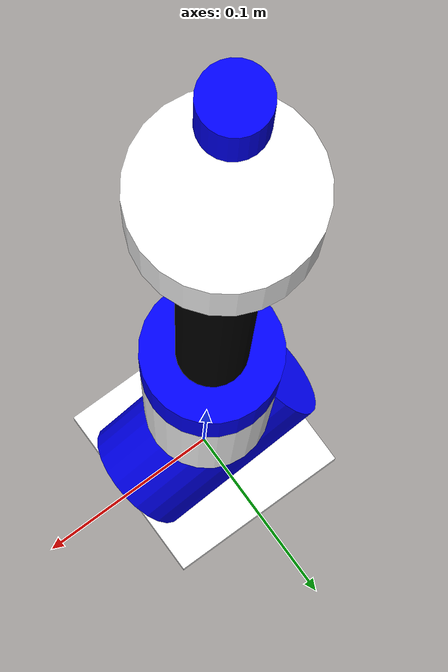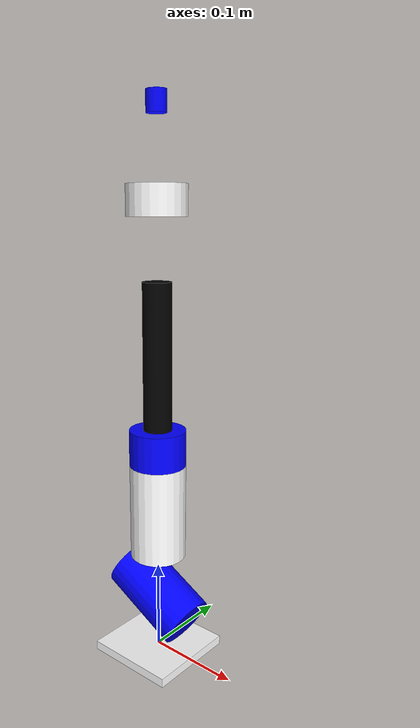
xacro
<?xml version="1.0"?>
<robot name="macroed" xmlns:xacro="http://ros.org/wiki/xacro">
   <!-- Defining the colors used in this robot -->
    <material name="Black">
        <color rgba="0 0 0 1"/>
    </material>

    <material name="White">
        <color rgba="1 1 1 1"/>
    </material>

    <material name="Blue">
        <color rgba="0 0 1 1"/>
    </material>

    <material name="Red">
        <color rgba="1 0 0 1"/>
    </material>

    <!-- Constants -->
    <xacro:property name="M_PI" value="3.14159"/>
    <xacro:property name="Y_Offset_1" value="0.045"/>
    <xacro:property name="Z_Offset_1" value="0.011414"/>

    <!-- link1 properties -->
    <xacro:property name="link1_width" value="0.03" />
    <xacro:property name="link1_len" value="0.094414" />

    <!-- link2 properties -->
    <xacro:property name="link2_width" value="0.03" />
    <xacro:property name="link2_len" value="0.105" />

    <!-- link3 properties -->
    <xacro:property name="link3_width" value="0.03" />
    <xacro:property name="link3_len" value="0.0389" />

    <!-- link4 properties -->
    <xacro:property name="link4_width" value="0.015" />
    <xacro:property name="link4_len" value="0.1525" />

    <!-- link5 properties -->
    <xacro:property name="link5_width" value="0.03" />
    <xacro:property name="link5_len" value="0.03" />

    <!-- link6 properties -->
    <xacro:property name="link6_width" value="0.01" />
    <xacro:property name="link6_len" value="0.02" />

    <!-- Inertial matrix -->
    <xacro:macro name="inertial_matrix" params="mass">
        <inertial>
            <mass value="${mass}" />
            <inertia ixx="1.0" ixy="0.0" ixz="0.0" iyy="0.5" iyz="0.0" izz="1.0" />
        </inertial>
    </xacro:macro>

    <!-- /////////////////////////////////////   BASE LINK    ////////////////////////////////////////////// -->
    <link name="base_link">
        <visual>
            <origin xyz="0 0 0" rpy="0 0 0" />
            <geometry>
                <box size="0.1 0.1 0.01" />
            </geometry>
            <material name="White" />
        </visual>
        <collision>
            <origin xyz="0 0 0" rpy="0 0 0" />
            <geometry>
                <box size="0.1 0.1 0.01" />
            </geometry>
        </collision>
    </link>

    <joint name="joint1" type="revolute">
        <parent link="base_link"/>
        <child link="link1"/>
        <origin xyz="0 0 0.02" rpy="0 ${M_PI/2} 0" />
        <axis xyz="-1 0 0" />
        <limit effort="300" velocity="1" lower="-2.96" upper="2.96"/>
        <dynamics damping="50" friction="1"/>
    </joint>

    <!-- /////////////////////////////////////   LINK1  ////////////////////////////////////////////// -->
    <link name="link1" >
        <visual>
            <origin xyz="-${link1_len/2} 0 0" rpy="0 0.4974188 0" />
            <geometry>
                <cylinder radius="${link1_width}" length="${link1_len}"/>
            </geometry>
            <material name="Blue" />
        </visual>

        <xacro:inertial_matrix mass="1"/>
    </link>

    <joint name="joint2" type="revolute">
        <parent link="link1"/>
        <child link="link2"/>
        <origin xyz="-${link1_len} 0 0.0" rpy="-${M_PI/2} 0 ${M_PI/2}" />
        <axis xyz="1 0 0" />
        <limit effort="300" velocity="1" lower="-2.35" upper="2.35" />
        <dynamics damping="50" friction="1"/>
    </joint>

    <!-- ///////////////////////////////////////   LINK2  ////////////////////////////////////////////// -->
    <link name="link2" >
        <visual>
            <origin xyz="0 0 ${link2_len/2}" rpy="0 0 0" />
            <geometry>
                <cylinder radius="${link2_width}" length="${link2_len}"/>
            </geometry>
            <material name="White" />
        </visual>

        <collision>
            <origin xyz="0 0 ${link2_len/2}" rpy="0 0 0" />
            <geometry>
                <cylinder radius="${link2_width}" length="${link2_len}"/>
            </geometry>
        </collision>
        <xacro:inertial_matrix mass="1"/>
    </link>

    <joint name="joint3" type="revolute">
        <parent link="link2"/>
        <child link="link3"/>
        <origin xyz="0 0 ${link2_len}" rpy="0 ${M_PI} 0" />
        <axis xyz="-1 0 0" />
        <limit effort="300" velocity="1" lower="-2.62" upper="2.62" />
        <dynamics damping="50" friction="1"/>
    </joint>

    <!-- /////////////////////////////////   LINK3  ///////////////////////////////////////////////////// -->
    <link name="link3" >
        <visual>
            <origin xyz="0 0 -${link3_len/2}" rpy="0 0 0" />
            <geometry>
                <cylinder radius="${link3_width}" length="${link3_len}"/>
            </geometry>
            <material name="Blue" />
        </visual>
        <collision>
            <origin xyz="0 0 -${link3_len/2}" rpy="0 0 0" />
            <geometry>
                <cylinder radius="${link3_width}" length="${link3_len}"/>
            </geometry>
        </collision>
        <xacro:inertial_matrix mass="1"/>
    </link>

    <joint name="joint4" type="revolute">
        <parent link="link3"/>
        <child link="link4"/>
        <origin xyz="0.0 0.0 -${link3_len}" rpy="0 ${M_PI/2} ${M_PI}" />
        <axis xyz="1 0 0" />
        <limit effort="300" velocity="1" lower="-2.62" upper="2.62" />
        <dynamics damping="50" friction="1"/>
    </joint>

    <!-- ///////////////////////////////////   LINK4  //////////////////////////////////////////////// -->
    <link name="link4" >
        <visual>
            <origin xyz="${link4_len/2} 0 0" rpy="0 ${M_PI/2} 0" />
            <geometry>
                <cylinder radius="${link4_width}" length="${link4_len}"/>
            </geometry>
            <material name="Black" />
        </visual>
        <collision>
            <origin xyz="${link4_len/2} 0 0" rpy="0 ${M_PI/2} 0" />
            <geometry>
                <cylinder radius="${link4_width}" length="${link4_len}"/>
            </geometry>
        </collision>
        <xacro:inertial_matrix mass="1"/>
    </link>

    <joint name="joint5" type="revolute">
        <parent link="link4"/>
        <child link="link5"/>
        <origin xyz="${link4_len} 0.0 0.0" rpy="0 ${M_PI/2} 0" />
        <axis xyz="1 0 0" />
        <limit effort="300" velocity="1" lower="-2.62" upper="2.62" />
        <dynamics damping="50" friction="1"/>
    </joint>

    <!-- //////////////////////////////////   LINK5  ///////////////////////////////////////////////// -->
    <link name="link5">
        <visual>
            <origin xyz="0 0 ${link4_len/2}" rpy="0 0 0" />
            <geometry>
                <cylinder radius="${link5_width}" length="${link5_len}"/>
            </geometry>
            <material name="White" />
        </visual>
        <collision>
            <origin xyz="0 0 ${link4_len/2} " rpy="0 0 0" />
            <geometry>
                <cylinder radius="${link5_width}" length="${link5_len}"/>
            </geometry>
        </collision>
        <xacro:inertial_matrix mass="1"/>
    </link>

    <joint name="joint6" type="revolute">
        <parent link="link5"/>
        <child link="link6"/>
        <origin xyz="0 0 ${link4_len}" rpy="${1.5*M_PI} -${M_PI/2} 0" />
        <axis xyz="1 0 0" />
        <limit effort="300" velocity="1" lower="-6.28" upper="6.28" />
        <dynamics damping="50" friction="1"/>
    </joint>

    <!-- ////////////////////////////////   LINK6  ///////////////////////////////////////////////// -->
    <link name="link6">
        <visual>
            <origin xyz="${link6_len/2} 0 0 " rpy="0 ${M_PI/2} 0" />
            <geometry>
                <cylinder radius="${link6_width}" length="${link6_len}"/>
            </geometry>
            <material name="Blue" />
        </visual>
        <collision>
            <origin xyz="${link6_len/2} 0 0" rpy="0 ${M_PI/2} 0" />
            <geometry>
                <cylinder radius="${link6_width}" length="${link6_len}"/>
            </geometry>
        </collision>
        <xacro:inertial_matrix mass="1"/>
    </link>

</robot>
